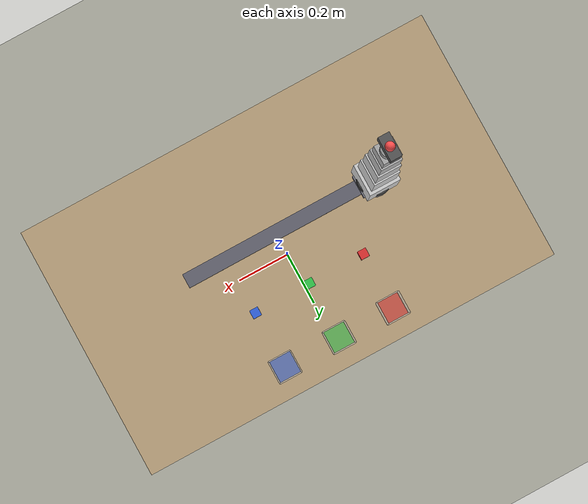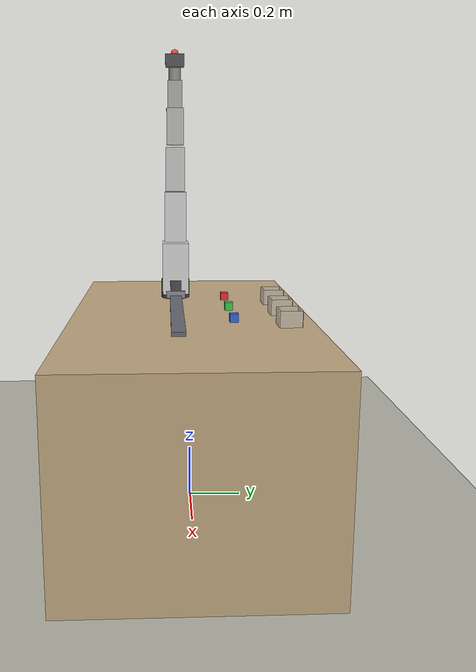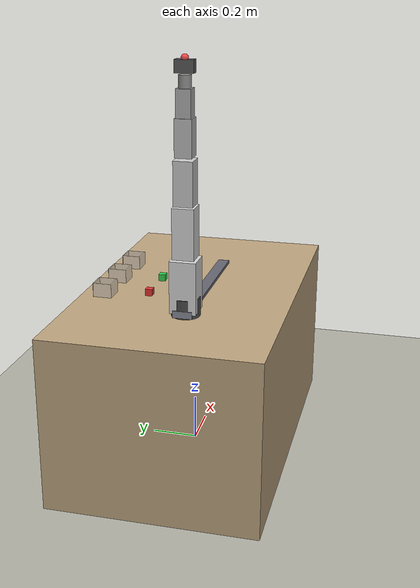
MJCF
<!-- envs/basic_scene.xml -->
<mujoco model="xarm6_rail_cubes_bins">

  <compiler angle="radian" meshdir="assets/"/>
  <option gravity="0 0 -9.81" timestep="0.002" integrator="implicitfast"/>

  <visual>
    <headlight ambient="0.4 0.4 0.4" diffuse="0.6 0.6 0.6"/>
    <rgba haze="0.15 0.25 0.35 1"/>
    <map zfar="30"/>
  </visual>

  <default>
    <default class="arm_link">
      <!-- Arm geoms: contype=2 collide with world (contype=1) but not each other -->
      <geom contype="2" conaffinity="1"/>
    </default>
    <default class="cube">
      <geom type="box" size="0.015 0.015 0.015" mass="0.05"
            friction="1.0 0.05 0.0001" solref="0.005 1" solimp="0.95 0.99 0.001"/>
    </default>
    <default class="bin_wall">
      <geom type="box" rgba="0.8 0.8 0.8 0.5" mass="0"
            contype="1" conaffinity="1"/>
    </default>
  </default>

  <asset>
    <!-- Materials for cubes -->
    <material name="red_mat"   rgba="0.9 0.2 0.2 1"/>
    <material name="green_mat" rgba="0.2 0.8 0.3 1"/>
    <material name="blue_mat"  rgba="0.2 0.4 0.9 1"/>
    <!-- Materials for bin floor markers -->
    <material name="red_bin_mat"   rgba="0.9 0.2 0.2 0.6"/>
    <material name="green_bin_mat" rgba="0.2 0.8 0.3 0.6"/>
    <material name="blue_bin_mat"  rgba="0.2 0.4 0.9 0.6"/>
  </asset>

  <worldbody>

    <!-- Lighting -->
    <light pos="0 0 2.5" dir="0 0 -1" diffuse="0.7 0.7 0.7"/>
    <light pos="0.5 0.5 1.8" dir="-0.3 -0.3 -1" diffuse="0.4 0.4 0.4"/>

    <!-- Floor -->
    <geom name="floor" type="plane" size="3 3 0.1"
          rgba="0.7 0.7 0.65 1" contype="1" conaffinity="1"/>

    <!-- Bench -->
    <body name="bench" pos="0 0 0.375">
      <geom name="bench_top" type="box" size="0.75 0.45 0.375"
            rgba="0.75 0.65 0.5 1" contype="1" conaffinity="1" mass="0"/>
    </body>

    <body name="rail_track" pos="0.0 -0.05 0.75">

      <geom name="rail_geom" type="box" size="0.35 0.025 0.015"
            rgba="0.4 0.4 0.45 1" contype="0" conaffinity="0" mass="0"/>

      <body name="rail_carriage" pos="-0.35 0.0 0.02">
        <joint name="rail" type="slide" axis="1 0 0"
               range="0.0 0.7" damping="200"/>
        <geom name="carriage_geom" type="box" size="0.06 0.04 0.015"
              rgba="0.55 0.55 0.6 1" contype="1" conaffinity="1" mass="2.0"/>

        <body name="xarm_base" pos="0 0 0.02">
          <geom name="base_link" type="cylinder" size="0.06 0.04"
                rgba="0.3 0.3 0.3 1" mass="0.5" class="arm_link"/>
          <joint name="joint1" type="hinge" axis="0 0 1"
                 range="-3.14159 3.14159" damping="10"/>

          <body name="link1" pos="0 0 0.09">
            <geom name="link1_geom" type="box" size="0.055 0.055 0.11"
                  rgba="0.85 0.85 0.85 1" mass="2.16" class="arm_link"/>
            <joint name="joint2" type="hinge" axis="0 1 0"
                   range="-2.0944 2.0944" damping="10"/>

            <body name="link2" pos="0 0 0.22">
              <geom name="link2_geom" type="box" size="0.045 0.045 0.105"
                    rgba="0.85 0.85 0.85 1" mass="1.71" class="arm_link"/>
              <joint name="joint3" type="hinge" axis="0 1 0"
                     range="-3.14159 1.2217" damping="8"/>

              <body name="link3" pos="0 0 0.20">
                <geom name="link3_geom" type="box" size="0.04 0.04 0.09"
                      rgba="0.8 0.8 0.8 1" mass="1.38" class="arm_link"/>
                <joint name="joint4" type="hinge" axis="1 0 0"
                       range="-1.9199 1.9199" damping="6"/>

                <body name="link4" pos="0 0 0.175">
                  <geom name="link4_geom" type="box" size="0.035 0.035 0.075"
                        rgba="0.75 0.75 0.75 1" mass="1.05" class="arm_link"/>
                  <joint name="joint5" type="hinge" axis="0 1 0"
                         range="-2.6180 2.6180" damping="4"/>

                  <body name="link5" pos="0 0 0.13">
                    <geom name="link5_geom" type="box" size="0.03 0.03 0.055"
                          rgba="0.7 0.7 0.7 1" mass="0.72" class="arm_link"/>
                    <joint name="joint6" type="hinge" axis="1 0 0"
                           range="-1.9199 1.9199" damping="3"/>

                    <body name="link6" pos="0 0 0.075">
                      <geom name="link6_geom" type="cylinder"
                            size="0.025 0.03"
                            rgba="0.6 0.6 0.6 1" mass="0.25" class="arm_link"/>
                      <site name="end_effector" pos="0 0 0.09"
                            size="0.015" rgba="1 0.3 0.3 1" type="sphere"/>
                      <body name="gripper" pos="0 0 0.06">
                        <geom name="gripper_geom" type="box"
                              size="0.018 0.038 0.025"
                              rgba="0.35 0.35 0.35 1" mass="0.15"
                              class="arm_link"/>
                      </body>
                    </body>
                  </body>
                </body>
              </body>
            </body>
          </body>
        </body>

      </body>
    </body>

    <!-- ============================================================
         CUBES - three RGB cubes near the rail (y=0.15)
    ============================================================ -->
    <body name="red_cube" pos="-0.20 0.15 0.78">
      <geom name="red_cube_geom" class="cube" material="red_mat"/>
      <joint type="free" name="red_cube_joint"/>
    </body>
    <body name="green_cube" pos="0.00 0.15 0.78">
      <geom name="green_cube_geom" class="cube" material="green_mat"/>
      <joint type="free" name="green_cube_joint"/>
    </body>
    <body name="blue_cube" pos="0.20 0.15 0.78">
      <geom name="blue_cube_geom" class="cube" material="blue_mat"/>
      <joint type="free" name="blue_cube_joint"/>
    </body>

    <body name="red_bin" pos="-0.20 0.35 0.75">
      <!-- Floor marker (colored) -->
      <geom name="red_bin_floor" type="box" size="0.040 0.040 0.001"
            pos="0 0 0.001" material="red_bin_mat"
            contype="1" conaffinity="1" mass="0"/>
      <!-- 4 walls -->
      <geom name="red_bin_w_front"  class="bin_wall"
            size="0.040 0.002 0.030" pos="0 -0.040 0.030"/>
      <geom name="red_bin_w_back"   class="bin_wall"
            size="0.040 0.002 0.030" pos="0  0.040 0.030"/>
      <geom name="red_bin_w_left"   class="bin_wall"
            size="0.002 0.040 0.030" pos="-0.040 0 0.030"/>
      <geom name="red_bin_w_right"  class="bin_wall"
            size="0.002 0.040 0.030" pos=" 0.040 0 0.030"/>
    </body>

    <body name="green_bin" pos="0.00 0.35 0.75">
      <geom name="green_bin_floor" type="box" size="0.040 0.040 0.001"
            pos="0 0 0.001" material="green_bin_mat"
            contype="1" conaffinity="1" mass="0"/>
      <geom name="green_bin_w_front" class="bin_wall"
            size="0.040 0.002 0.030" pos="0 -0.040 0.030"/>
      <geom name="green_bin_w_back"  class="bin_wall"
            size="0.040 0.002 0.030" pos="0  0.040 0.030"/>
      <geom name="green_bin_w_left"  class="bin_wall"
            size="0.002 0.040 0.030" pos="-0.040 0 0.030"/>
      <geom name="green_bin_w_right" class="bin_wall"
            size="0.002 0.040 0.030" pos=" 0.040 0 0.030"/>
    </body>

    <body name="blue_bin" pos="0.20 0.35 0.75">
      <geom name="blue_bin_floor" type="box" size="0.040 0.040 0.001"
            pos="0 0 0.001" material="blue_bin_mat"
            contype="1" conaffinity="1" mass="0"/>
      <geom name="blue_bin_w_front" class="bin_wall"
            size="0.040 0.002 0.030" pos="0 -0.040 0.030"/>
      <geom name="blue_bin_w_back"  class="bin_wall"
            size="0.040 0.002 0.030" pos="0  0.040 0.030"/>
      <geom name="blue_bin_w_left"  class="bin_wall"
            size="0.002 0.040 0.030" pos="-0.040 0 0.030"/>
      <geom name="blue_bin_w_right" class="bin_wall"
            size="0.002 0.040 0.030" pos=" 0.040 0 0.030"/>
    </body>

  </worldbody>

  <!-- Suppress collisions between adjacent arm links -->
  <contact>
    <exclude body1="rail_carriage" body2="xarm_base"/>
    <exclude body1="rail_carriage" body2="link1"/>
    <exclude body1="xarm_base"     body2="link1"/>
    <exclude body1="link1"         body2="link2"/>
    <exclude body1="link2"         body2="link3"/>
    <exclude body1="link3"         body2="link4"/>
    <exclude body1="link4"         body2="link5"/>
    <exclude body1="link5"         body2="link6"/>
    <exclude body1="link6"         body2="gripper"/>
  </contact>

  <actuator>
    <position name="act_rail" joint="rail"   kp="2000" kv="200"/>
    <position name="act1"     joint="joint1" kp="500"  kv="50"/>
    <position name="act2"     joint="joint2" kp="500"  kv="50"/>
    <position name="act3"     joint="joint3" kp="400"  kv="40"/>
    <position name="act4"     joint="joint4" kp="300"  kv="30"/>
    <position name="act5"     joint="joint5" kp="200"  kv="20"/>
    <position name="act6"     joint="joint6" kp="150"  kv="15"/>
  </actuator>

</mujoco>
